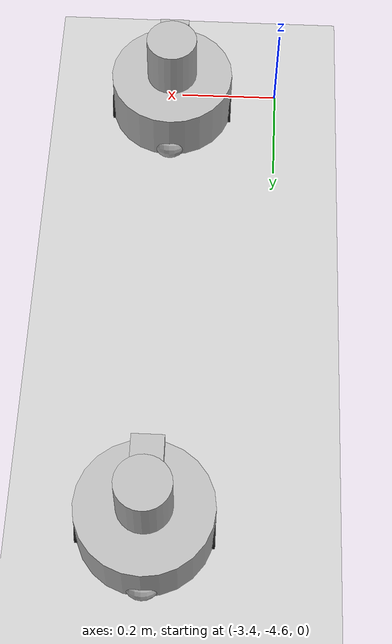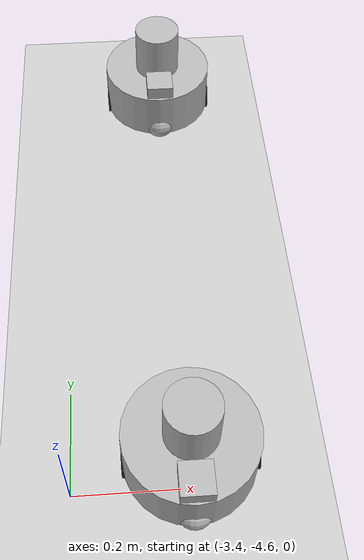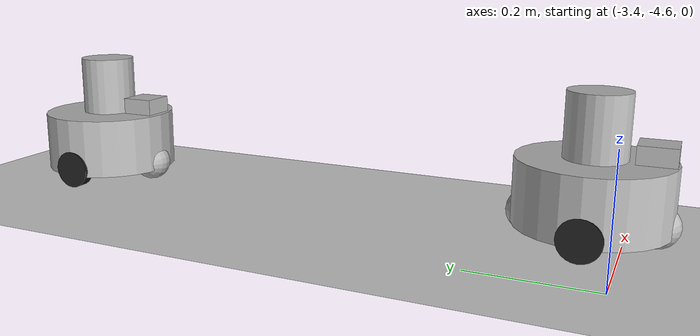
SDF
<sdf version="1.7">
 <world name="default">
  <light name="sun" type="directional">
   <pose>0 0 10 0 -0 0</pose>
   <diffuse>0.8 0.8 0.8 1</diffuse>
   <specular>0.2 0.2 0.2 1</specular>
   <attenuation>
    <range>1000</range>
    <constant>0.9</constant>
    <linear>0.01</linear>
    <quadratic>0.001</quadratic>
   </attenuation>
   <direction>-0.5 0.1 -0.9</direction>
   <spot><inner_angle>0</inner_angle><outer_angle>0</outer_angle><falloff>0</falloff></spot>
  </light>
  <model name="ground_plane">
   <static>1</static>
   <link name="link">
    <collision name="collision">
     <geometry><plane><normal>0 0 1</normal><size>100 100</size></plane></geometry>
     <surface><friction><ode><mu>100</mu><mu2>50</mu2></ode></friction></surface>
    </collision>
    <visual name="visual">
     <cast_shadows>0</cast_shadows>
     <geometry><plane><normal>0 0 1</normal><size>100 100</size></plane></geometry>
     <material>
      <script><uri>file://media/materials/scripts/gazebo.material</uri><name>Gazebo/Grey</name></script>
     </material>
    </visual>
   </link>
  </model>
  <gravity>0 0 -9.8</gravity>
  <magnetic_field>6e-06 2.3e-05 -4.2e-05</magnetic_field>
  <atmosphere type="adiabatic"/>
  <physics type="ode">
   <max_step_size>0.001</max_step_size>
   <real_time_factor>1</real_time_factor>
   <real_time_update_rate>1000</real_time_update_rate>
  </physics>
  <scene><ambient>0.4 0.4 0.4 1</ambient><background>0.7 0.7 0.7 1</background><shadows>1</shadows></scene>
  <spherical_coordinates>
   <surface_model>EARTH_WGS84</surface_model>
   <latitude_deg>0</latitude_deg>
   <longitude_deg>0</longitude_deg>
   <elevation>0</elevation>
   <heading_deg>0</heading_deg>
  </spherical_coordinates>
  <model name="Robot2">
   <link name="base_link">
    <inertial>
     <pose>-0.002373 0.00016 0.069509 0 -0 0</pose>
     <mass>3.624</mass>
     <inertia>
      <ixx>0.0529466</ixx>
      <ixy>-3.03764e-05</ixy>
      <ixz>0.000688519</ixz>
      <iyy>0.0577457</iyy>
      <iyz>2.29154e-05</iyz>
      <izz>0.0998172</izz>
     </inertia>
    </inertial>
    <collision name="base_link_fixed_joint_lump__base_footprint_collision">
     <pose>0 0 0.07 0 -0 0</pose>
     <geometry><cylinder><length>0.11</length><radius>0.125</radius></cylinder></geometry>
    </collision>
    <collision name="base_link_fixed_joint_lump__ball_1_collision_1">
     <pose>-0.1 0 0.0275 0 -0 0</pose>
     <geometry><sphere><radius>0.035</radius></sphere></geometry>
    </collision>
    <collision name="base_link_fixed_joint_lump__ball_2_collision_2">
     <pose>0.1 0 0.0275 0 -0 0</pose>
     <geometry><sphere><radius>0.035</radius></sphere></geometry>
    </collision>
    <collision name="base_link_fixed_joint_lump__imu_collision_3">
     <pose>0.05 0.058 0.03 0 -0 0</pose>
     <geometry><box><size>0.006 0.004 0.008</size></box></geometry>
    </collision>
    <collision name="base_link_fixed_joint_lump__marvelmind_collision_4">
     <pose>-0.091 0 0.143 0 -0 0</pose>
     <geometry><box><size>0.06 0.06 0.03</size></box></geometry>
    </collision>
    <collision name="base_link_fixed_joint_lump__lidar_link_collision_5">
     <pose>0 0 0.143 0 -0 1.5708</pose>
     <geometry><cylinder><length>0.18</length><radius>0.0508</radius></cylinder></geometry>
    </collision>
    <visual name="base_link_fixed_joint_lump__base_footprint_visual">
     <pose>0 0 0.07 0 -0 0</pose>
     <geometry><cylinder><length>0.11</length><radius>0.125</radius></cylinder></geometry>
    </visual>
    <visual name="base_link_fixed_joint_lump__ball_1_visual_1">
     <pose>-0.1 0 0.0275 1.5707 -0 0</pose>
     <geometry><sphere><radius>0.035</radius></sphere></geometry>
    </visual>
    <visual name="base_link_fixed_joint_lump__ball_2_visual_2">
     <pose>0.1 0 0.0275 1.5707 -0 0</pose>
     <geometry><sphere><radius>0.035</radius></sphere></geometry>
    </visual>
    <visual name="base_link_fixed_joint_lump__imu_visual_3">
     <pose>0.05 0.058 0.03 0 -0 0</pose>
     <geometry><box><size>0.0038 0.0052 0.00113</size></box></geometry>
    </visual>
    <visual name="base_link_fixed_joint_lump__marvelmind_visual_4">
     <pose>-0.091 0 0.143 0 -0 0</pose>
     <geometry><box><size>0.06 0.06 0.03</size></box></geometry>
    </visual>
    <visual name="base_link_fixed_joint_lump__lidar_link_visual_5">
     <pose>0 0 0.143 0 -0 1.5708</pose>
     <geometry><cylinder><length>0.18</length><radius>0.0508</radius></cylinder></geometry>
    </visual>
   </link>
   <joint name="joint_wheel_left" type="revolute">
    <pose relative_to="base_link">0 -0.115 0.0275 0 -0 0</pose>
    <parent>base_link</parent>
    <child>left_wheel</child>
    <axis>
     <xyz>1 0 0</xyz>
     <limit><lower>-1e+16</lower><upper>1e+16</upper></limit>
     <dynamics><spring_reference>0</spring_reference><spring_stiffness>0</spring_stiffness></dynamics>
    </axis>
   </joint>
   <link name="left_wheel">
    <pose relative_to="joint_wheel_left">0 0 0 0 -0 0</pose>
    <inertial>
     <mass>0.5</mass>
     <inertia><ixx>0.0008</ixx><ixy>0</ixy><ixz>0</ixz><iyy>0.0008</iyy><iyz>0</iyz><izz>0.000266</izz></inertia>
    </inertial>
    <collision name="left_wheel_collision">
     <pose>0 0 0 1.5707 -0 0</pose>
     <geometry><cylinder><length>0.02</length><radius>0.035</radius></cylinder></geometry>
     <surface>
      <contact><ode><kp>1e+07</kp><kd>1</kd></ode></contact>
      <friction><ode><mu>200</mu><mu2>100</mu2><fdir1>1 0 0</fdir1></ode></friction>
     </surface>
    </collision>
    <visual name="left_wheel_visual">
     <pose>0 0 0 1.5707 -0 0</pose>
     <geometry><cylinder><length>0.02</length><radius>0.035</radius></cylinder></geometry>
     <material>
      <script><name>Gazebo/Black</name><uri>file://media/materials/scripts/gazebo.material</uri></script>
     </material>
    </visual>
   </link>
   <joint name="joint_wheel_right" type="revolute">
    <pose relative_to="base_link">0 0.115 0.0275 0 -0 0</pose>
    <parent>base_link</parent>
    <child>right_wheel</child>
    <axis>
     <xyz>1 0 0</xyz>
     <limit><lower>-1e+16</lower><upper>1e+16</upper></limit>
     <dynamics><spring_reference>0</spring_reference><spring_stiffness>0</spring_stiffness></dynamics>
    </axis>
   </joint>
   <link name="right_wheel">
    <pose relative_to="joint_wheel_right">0 0 0 0 -0 0</pose>
    <inertial>
     <mass>0.5</mass>
     <inertia><ixx>0.0008</ixx><ixy>0</ixy><ixz>0</ixz><iyy>0.0008</iyy><iyz>0</iyz><izz>0.000266</izz></inertia>
    </inertial>
    <collision name="right_wheel_collision">
     <pose>0 0 0 1.5707 -0 0</pose>
     <geometry><cylinder><length>0.02</length><radius>0.035</radius></cylinder></geometry>
     <surface>
      <contact><ode><kp>1e+07</kp><kd>1</kd></ode></contact>
      <friction><ode><mu>200</mu><mu2>100</mu2><fdir1>1 0 0</fdir1></ode></friction>
     </surface>
    </collision>
    <visual name="right_wheel_visual">
     <pose>0 0 0 1.5707 -0 0</pose>
     <geometry><cylinder><length>0.02</length><radius>0.035</radius></cylinder></geometry>
     <material>
      <script><name>Gazebo/Black</name><uri>file://media/materials/scripts/gazebo.material</uri></script>
     </material>
    </visual>
   </link>
   <plugin name="gazebo_ros_diff_drive" filename="libgazebo_ros_diff_drive.so">
    <alwaysOn>1</alwaysOn>
    <updateRate>10</updateRate>
    <max_wheel_torque>100</max_wheel_torque>
    <left_joint>joint_wheel_left</left_joint>
    <right_joint>joint_wheel_right</right_joint>
    <wheel_separation>0.0955</wheel_separation>
    <wheel_diameter>0.044</wheel_diameter>
    <command_topic>cmd_vel</command_topic>
    <publish_odom>1</publish_odom>
    <publish_odom_tf>1</publish_odom_tf>
    <publish_wheel_tf>1</publish_wheel_tf>
    <odometry_topic>odom</odometry_topic>
    <odometry_frame>odom</odometry_frame>
    <robot_base_frame>base_link</robot_base_frame>
    <ros><namespace>Robot2</namespace></ros>
   </plugin>
   <frame name="joint_ball_1" attached_to="base_footprint"><pose>-0.1 0 -0.0425 0 -0 0</pose></frame>
   <frame name="ball_1" attached_to="joint_ball_1"/>
   <frame name="joint_ball_2" attached_to="base_footprint"><pose>0.1 0 -0.0425 0 -0 0</pose></frame>
   <frame name="ball_2" attached_to="joint_ball_2"/>
   <frame name="joint_imu" attached_to="base_footprint"><pose>0.05 0.058 -0.04 0 -0 0</pose></frame>
   <frame name="imu" attached_to="joint_imu"/>
   <frame name="joint_base_link" attached_to="base_link"><pose>0 0 0.07 0 -0 0</pose></frame>
   <frame name="base_footprint" attached_to="joint_base_link"/>
   <frame name="joint_marv" attached_to="base_link"><pose>-0.091 0 0.143 0 -0 0</pose></frame>
   <frame name="marvelmind" attached_to="joint_marv"/>
   <frame name="lidar_joint" attached_to="base_link"><pose>0 0 0.143 0 -0 1.5708</pose></frame>
   <frame name="lidar_link" attached_to="lidar_joint"/>
   <pose>-3.18 -4.548 0.007499 0 -1e-06 1.57068</pose>
  </model>
  <model name="Robot1">
   <link name="base_link">
    <inertial>
     <pose>-0.002373 0.00016 0.069509 0 -0 0</pose>
     <mass>3.624</mass>
     <inertia>
      <ixx>0.0529466</ixx>
      <ixy>-3.03764e-05</ixy>
      <ixz>0.000688519</ixz>
      <iyy>0.0577457</iyy>
      <iyz>2.29154e-05</iyz>
      <izz>0.0998172</izz>
     </inertia>
    </inertial>
    <collision name="base_link_fixed_joint_lump__base_footprint_collision">
     <pose>0 0 0.07 0 -0 0</pose>
     <geometry><cylinder><length>0.11</length><radius>0.125</radius></cylinder></geometry>
    </collision>
    <collision name="base_link_fixed_joint_lump__ball_1_collision_1">
     <pose>-0.1 0 0.0275 0 -0 0</pose>
     <geometry><sphere><radius>0.035</radius></sphere></geometry>
    </collision>
    <collision name="base_link_fixed_joint_lump__ball_2_collision_2">
     <pose>0.1 0 0.0275 0 -0 0</pose>
     <geometry><sphere><radius>0.035</radius></sphere></geometry>
    </collision>
    <collision name="base_link_fixed_joint_lump__imu_collision_3">
     <pose>0.05 0.058 0.03 0 -0 0</pose>
     <geometry><box><size>0.006 0.004 0.008</size></box></geometry>
    </collision>
    <collision name="base_link_fixed_joint_lump__marvelmind_collision_4">
     <pose>-0.091 0 0.143 0 -0 0</pose>
     <geometry><box><size>0.06 0.06 0.03</size></box></geometry>
    </collision>
    <collision name="base_link_fixed_joint_lump__lidar_link_collision_5">
     <pose>0 0 0.143 0 -0 1.5708</pose>
     <geometry><cylinder><length>0.18</length><radius>0.0508</radius></cylinder></geometry>
    </collision>
    <visual name="base_link_fixed_joint_lump__base_footprint_visual">
     <pose>0 0 0.07 0 -0 0</pose>
     <geometry><cylinder><length>0.11</length><radius>0.125</radius></cylinder></geometry>
    </visual>
    <visual name="base_link_fixed_joint_lump__ball_1_visual_1">
     <pose>-0.1 0 0.0275 1.5707 -0 0</pose>
     <geometry><sphere><radius>0.035</radius></sphere></geometry>
    </visual>
    <visual name="base_link_fixed_joint_lump__ball_2_visual_2">
     <pose>0.1 0 0.0275 1.5707 -0 0</pose>
     <geometry><sphere><radius>0.035</radius></sphere></geometry>
    </visual>
    <visual name="base_link_fixed_joint_lump__imu_visual_3">
     <pose>0.05 0.058 0.03 0 -0 0</pose>
     <geometry><box><size>0.0038 0.0052 0.00113</size></box></geometry>
    </visual>
    <visual name="base_link_fixed_joint_lump__marvelmind_visual_4">
     <pose>-0.091 0 0.143 0 -0 0</pose>
     <geometry><box><size>0.06 0.06 0.03</size></box></geometry>
    </visual>
    <visual name="base_link_fixed_joint_lump__lidar_link_visual_5">
     <pose>0 0 0.143 0 -0 1.5708</pose>
     <geometry><cylinder><length>0.18</length><radius>0.0508</radius></cylinder></geometry>
    </visual>
   </link>
   <joint name="joint_wheel_left" type="revolute">
    <pose relative_to="base_link">0 -0.115 0.0275 0 -0 0</pose>
    <parent>base_link</parent>
    <child>left_wheel</child>
    <axis>
     <xyz>1 0 0</xyz>
     <limit><lower>-1e+16</lower><upper>1e+16</upper></limit>
     <dynamics><spring_reference>0</spring_reference><spring_stiffness>0</spring_stiffness></dynamics>
    </axis>
   </joint>
   <link name="left_wheel">
    <pose relative_to="joint_wheel_left">0 0 0 0 -0 0</pose>
    <inertial>
     <mass>0.5</mass>
     <inertia><ixx>0.0008</ixx><ixy>0</ixy><ixz>0</ixz><iyy>0.0008</iyy><iyz>0</iyz><izz>0.000266</izz></inertia>
    </inertial>
    <collision name="left_wheel_collision">
     <pose>0 0 0 1.5707 -0 0</pose>
     <geometry><cylinder><length>0.02</length><radius>0.035</radius></cylinder></geometry>
     <surface>
      <contact><ode><kp>1e+07</kp><kd>1</kd></ode></contact>
      <friction><ode><mu>200</mu><mu2>100</mu2><fdir1>1 0 0</fdir1></ode></friction>
     </surface>
    </collision>
    <visual name="left_wheel_visual">
     <pose>0 0 0 1.5707 -0 0</pose>
     <geometry><cylinder><length>0.02</length><radius>0.035</radius></cylinder></geometry>
     <material>
      <script><name>Gazebo/Black</name><uri>file://media/materials/scripts/gazebo.material</uri></script>
     </material>
    </visual>
   </link>
   <joint name="joint_wheel_right" type="revolute">
    <pose relative_to="base_link">0 0.115 0.0275 0 -0 0</pose>
    <parent>base_link</parent>
    <child>right_wheel</child>
    <axis>
     <xyz>1 0 0</xyz>
     <limit><lower>-1e+16</lower><upper>1e+16</upper></limit>
     <dynamics><spring_reference>0</spring_reference><spring_stiffness>0</spring_stiffness></dynamics>
    </axis>
   </joint>
   <link name="right_wheel">
    <pose relative_to="joint_wheel_right">0 0 0 0 -0 0</pose>
    <inertial>
     <mass>0.5</mass>
     <inertia><ixx>0.0008</ixx><ixy>0</ixy><ixz>0</ixz><iyy>0.0008</iyy><iyz>0</iyz><izz>0.000266</izz></inertia>
    </inertial>
    <collision name="right_wheel_collision">
     <pose>0 0 0 1.5707 -0 0</pose>
     <geometry><cylinder><length>0.02</length><radius>0.035</radius></cylinder></geometry>
     <surface>
      <contact><ode><kp>1e+07</kp><kd>1</kd></ode></contact>
      <friction><ode><mu>200</mu><mu2>100</mu2><fdir1>1 0 0</fdir1></ode></friction>
     </surface>
    </collision>
    <visual name="right_wheel_visual">
     <pose>0 0 0 1.5707 -0 0</pose>
     <geometry><cylinder><length>0.02</length><radius>0.035</radius></cylinder></geometry>
     <material>
      <script><name>Gazebo/Black</name><uri>file://media/materials/scripts/gazebo.material</uri></script>
     </material>
    </visual>
   </link>
   <plugin name="gazebo_ros_diff_drive" filename="libgazebo_ros_diff_drive.so">
    <alwaysOn>1</alwaysOn>
    <updateRate>10</updateRate>
    <max_wheel_torque>100</max_wheel_torque>
    <left_joint>joint_wheel_left</left_joint>
    <right_joint>joint_wheel_right</right_joint>
    <wheel_separation>0.0955</wheel_separation>
    <wheel_diameter>0.044</wheel_diameter>
    <command_topic>cmd_vel</command_topic>
    <publish_odom>1</publish_odom>
    <publish_odom_tf>1</publish_odom_tf>
    <publish_wheel_tf>1</publish_wheel_tf>
    <odometry_topic>odom</odometry_topic>
    <odometry_frame>odom</odometry_frame>
    <robot_base_frame>base_link</robot_base_frame>
    <ros><namespace>Robot1</namespace></ros>
   </plugin>
   <frame name="joint_ball_1" attached_to="base_footprint"><pose>-0.1 0 -0.0425 0 -0 0</pose></frame>
   <frame name="ball_1" attached_to="joint_ball_1"/>
   <frame name="joint_ball_2" attached_to="base_footprint"><pose>0.1 0 -0.0425 0 -0 0</pose></frame>
   <frame name="ball_2" attached_to="joint_ball_2"/>
   <frame name="joint_imu" attached_to="base_footprint"><pose>0.05 0.058 -0.04 0 -0 0</pose></frame>
   <frame name="imu" attached_to="joint_imu"/>
   <frame name="joint_base_link" attached_to="base_link"><pose>0 0 0.07 0 -0 0</pose></frame>
   <frame name="base_footprint" attached_to="joint_base_link"/>
   <frame name="joint_marv" attached_to="base_link"><pose>-0.091 0 0.143 0 -0 0</pose></frame>
   <frame name="marvelmind" attached_to="joint_marv"/>
   <frame name="lidar_joint" attached_to="base_link"><pose>0 0 0.143 0 -0 1.5708</pose></frame>
   <frame name="lidar_link" attached_to="lidar_joint"/>
   <pose>-3.18 -3.595 0.007499 0 -1e-06 1.57068</pose>
  </model>
 </world>
</sdf>
